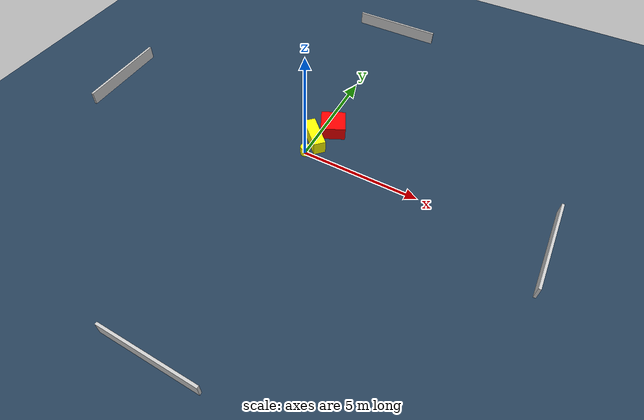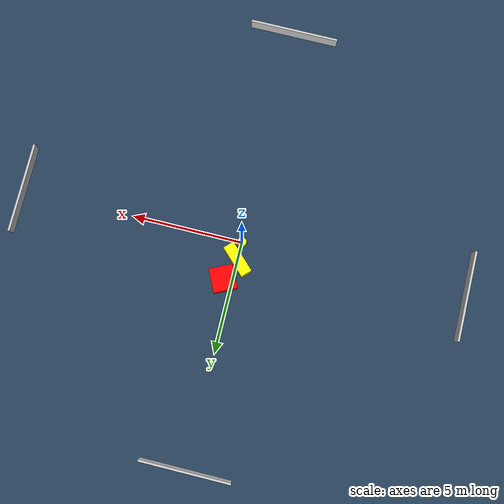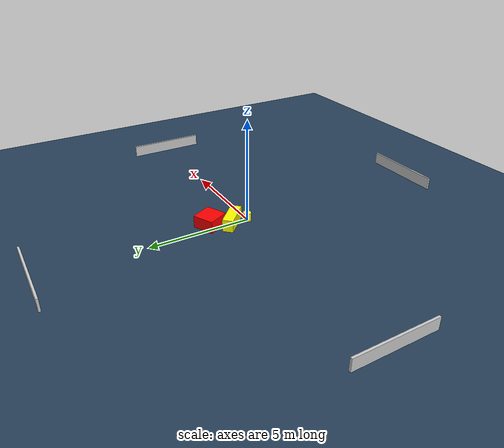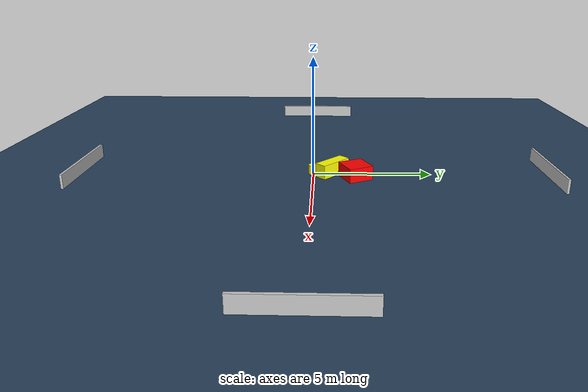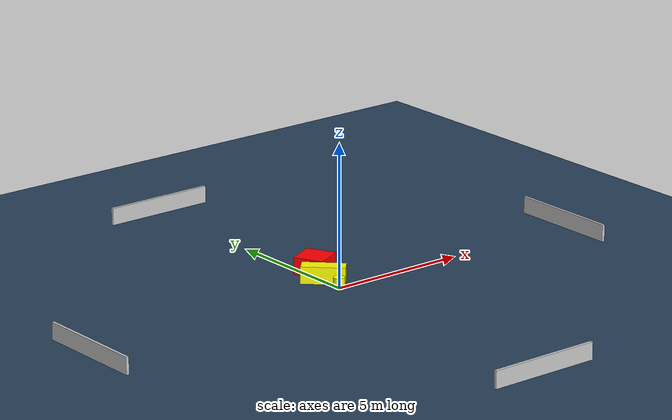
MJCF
<?xml version="1.0" ?>
<mujoco model="generated_environment">
  <option timestep="0.01" integrator="RK4" cone="elliptic"/>
  <default>
    <geom density="1"/>
  </default>
  <asset>
    <texture builtin="gradient" height="3072" name="skybox" rgb1="0.3 0.5 0.7" rgb2="0 0 0" type="skybox" width="512"/>
    <texture builtin="checker" height="300" name="groundplane" rgb1="0.2 0.3 0.4" rgb2="0.1 0.2 0.3" type="2d" width="300"/>
    <material name="groundplane" reflectance="0.2" texrepeat="5 5" texture="groundplane"/>
  </asset>
  <worldbody>
    <light dir="0 0 -1" directional="true" pos="0 0 1.5"/>
    <geom condim="3" friction="0.5 0.005 0.001" material="groundplane" name="floor" pos="0 0 0" size="0 0 0.05" type="plane"/>
    <body name="walls">
      <geom name="wall_1" condim="4" pos="-10.0 0.0 0.3" rgba="0.800000011920929 0.800000011920929 0.800000011920929 1.0" size="0.05 2.0 0.3" type="box"/>
      <geom name="wall_2" condim="4" pos="10.0 0.0 0.3" rgba="0.800000011920929 0.800000011920929 0.800000011920929 1.0" size="0.05 2.0 0.3" type="box"/>
      <geom name="wall_3" condim="4" pos="0.0 -10.0 0.3" rgba="0.800000011920929 0.800000011920929 0.800000011920929 1.0" size="2.0 0.05 0.3" type="box"/>
      <geom name="wall_4" condim="4" pos="0.0 10.0 0.3" rgba="0.800000011920929 0.800000011920929 0.800000011920929 1.0" size="2.0 0.05 0.3" type="box"/>
    </body>
    <body name="robot">
      <joint name="joint_x" type="slide" pos="0 0 0" axis="1 0 0"/>
      <joint name="joint_y" type="slide" pos="0 0 0" axis="0 1 0"/>
      <geom name="robot" type="cylinder" pos="0.0 0.0 0.2" size="0.2 0.2 0.0" mass="5.0" friction="1.0 0.005 0.0001" condim="4" rgba="1.0 1.0 0.0 1.0"/>
    </body>
    <body name="obstacle_1_movable">
      <geom name="obstacle_1_movable" condim="4" pos="0.0015931446329105977 0.8150243075385227 0.3" euler="0 0 135.63975162402778" friction="0.0 0.005 0.001" rgba="1.0 1.0 0.0 1.0" size="0.7473406250931383 0.2584387662854797 0.3" type="box" mass="0.1"/>
      <joint type="free"/>
    </body>
    <body name="obstacle_2_static">
      <geom name="obstacle_2_static" condim="4" pos="0.4071968664476156 1.7835882945646906 0.3" euler="0 0 25.8136279965813" friction="0.0 0.005 0.001" rgba="1.0 0.0 0.0 1.0" size="0.531993069677483 0.5357752064888459 0.3" type="box"/>
    </body>
  </worldbody>
  <actuator>
    <motor name="actuator_x" joint="joint_x" gear="1" ctrlrange="-1 1"/>
    <motor name="actuator_y" joint="joint_y" gear="1" ctrlrange="-1 1"/>
  </actuator>
</mujoco>
